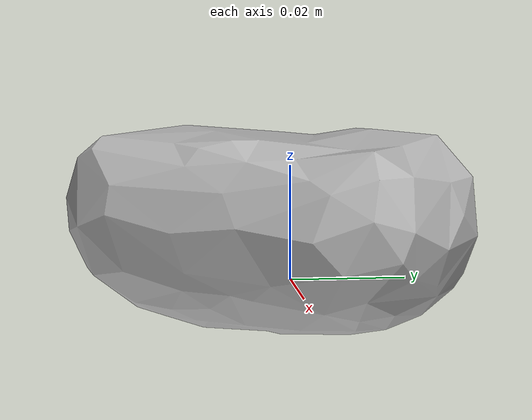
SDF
<?xml version='1.0'?>
<sdf version="1.4">
  <model name="073-h_lego_duplo">
    <static>false</static>
    <link name="link">
      <inertial>
        <pose>0.0015150579184641765 -0.0035450615161936394 0.010226145466313851 0.9626407093924189 -1.566712446138901 3.11703324969074</pose>
        <mass>0.007226179028403559</mass>
        <inertia>
          <ixx>3.1483176494100486e-06</ixx>
          <ixy>-8.325047848507077e-25</ixy>
          <ixz>-1.0813378312462194e-23</ixz>
          <iyy>2.9372786340627546e-06</iyy>
          <iyz>1.5064222783312303e-23</iyz>
          <izz>1.267040586401535e-06</izz>
        </inertia>
      </inertial>
      <collision name="collision">
        <geometry>
          <mesh>
            <!-- Use a downsampled mesh for collisions -->
            <uri>model:///073-h_lego_duplo/073-h_lego_duplo_250_collision.stl</uri>
	        </mesh>
        </geometry>
        <surface>
      </surface>
      </collision>
      <visual name="visual">
        <geometry>
          <mesh>
            <uri>model:///073-h_lego_duplo/textured.obj</uri>
	        </mesh>
        </geometry>
        <material>
          <script>
            <uri>model:///073-h_lego_duplo/073-h_lego_duplo.material</uri>
            <name>073-h_lego_duplo</name>
          </script>
        </material>
      </visual>
    </link>
  </model>
</sdf>
